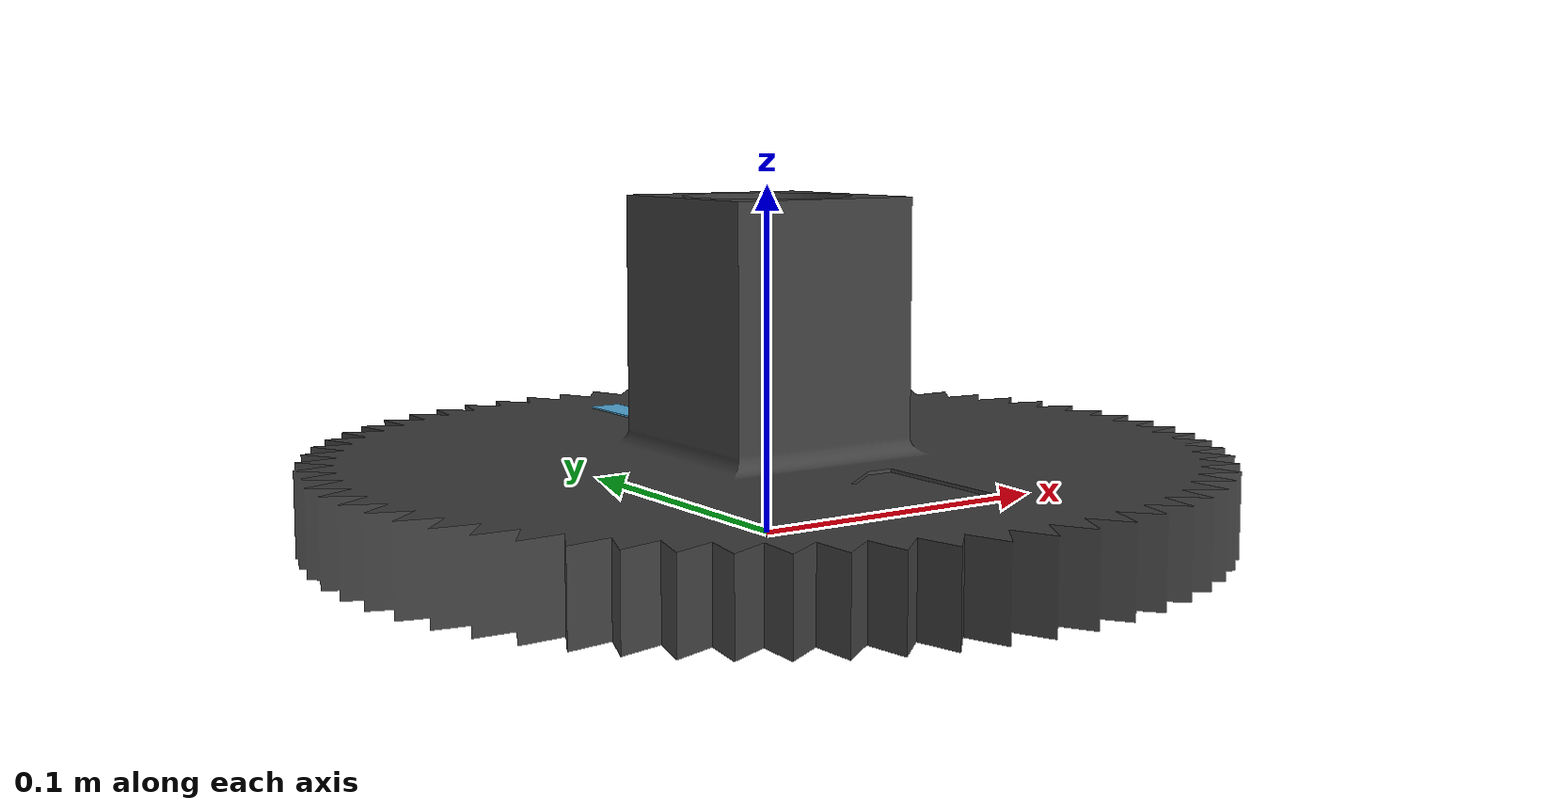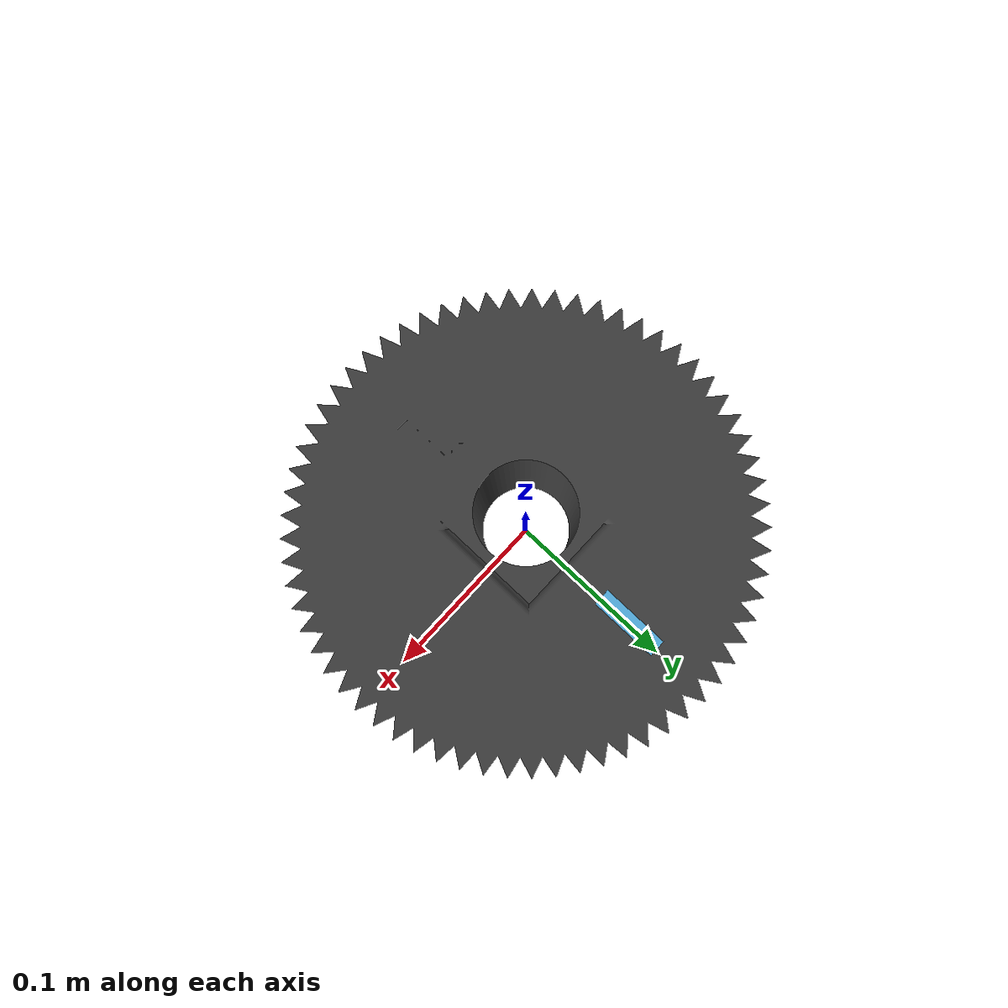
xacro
<?xml version="1.0" ?>
<robot name="first_gear" xmlns:xacro="http://wiki.ros.org/xacro" >
    <xacro:include filename="$(find sirgas_description)/urdf/inc/apriltag_card.xacro"/>

    <link name="first_gear">
        <visual>
            <origin rpy="0 0 0" xyz="0 0 0"/>
            <geometry>
                <mesh filename="file://$(find sirgas_description)/meshes/First_Gear.stl" />
            </geometry>
            <material name="DarkGrey">
                <color rgba="0.25 0.25 0.25 1.0" />
            </material>
        </visual>
        <collision>
            <origin rpy="0 0 0" xyz="0 0 0"/>
            <geometry>
                <mesh filename="file://$(find sirgas_description)/meshes/First_Gear.stl" />
            </geometry>
        </collision>
        <inertial>
            <mass value="0.409"/>
            <origin rpy="0 0 0" xyz="0 0 0"/>
            <inertia ixx="0.00615061" ixy="0.0" ixz="0.0" iyx="0.0" iyy="0.00615163" iyz="0.0" izx="0.0" izy= "0.0" izz="0.01209542"/>
        </inertial>
    </link>
    <xacro:attach_apriltag_card
        parent_link="first_gear"
        tag_size="0.01"
        extra_len="0.03"
        tag_thickness="0.0005"
        xyz="0 0.075 0.025"
        rpy="0 3.14 0"
        link_name="first_gear_apriltag"/>

</robot>

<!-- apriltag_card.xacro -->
<robot xmlns:xacro="http://wiki.ros.org/xacro">

  <xacro:macro name="attach_apriltag_card" params="
      parent_link
      tag_size:=0.02
      extra_len:=0.03
      tag_thickness:=0.001
      xyz:='0 0 0.02'
      rpy:='0 0 0'
      link_name:='${parent_link}_apriltag'
      mass:=0.01
      texture_path:='package://sirgas_description/meshes/Apriltag36_11_00000/materials/textures/tag36_11_00000.png'
      add_back_visual:=false
      back_epsilon:=0.0005">
    <xacro:property name="size_x" value="${tag_size}"/>
    <xacro:property name="size_y" value="${tag_size + extra_len}"/>
    <xacro:property name="size_z" value="${tag_thickness}"/>
    <link name="${link_name}">
      <!-- front face -->
      <visual>
        <origin xyz="${xyz}" rpy="${rpy}"/>
        <geometry>
          <box size="${size_x} ${size_y} ${size_z}"/>
        </geometry>
        <material name="${link_name}_front_tex">
          <texture filename="${texture_path}"/>
        </material>
      </visual>

      <xacro:if value="${add_back_visual}">
        <visual>
          <origin xyz="${xyz}" rpy="0 3.141592653589793 0"/>
          <geometry>
            <box size="${tag_size} ${tag_size} ${tag_thickness}"/>
          </geometry>
          <material name="${link_name}_back_tex">
            <texture filename="${texture_path}"/>
          </material>
        </visual>
      </xacro:if>

      <collision>
        <origin xyz="${xyz}" rpy="${rpy}"/>
        <geometry>
           <box size="${size_x} ${size_y} ${size_z}"/>
        </geometry>
      </collision>

      <inertial>
          <origin xyz="0 0 0" rpy="0 0 0"/>
          <mass value="${mass}"/>
          <xacro:property name="Ixx" value="${mass*((size_y*size_y + size_z*size_z)/12.0)}"/>
          <xacro:property name="Iyy" value="${mass*((size_x*size_x + size_z*size_z)/12.0)}"/>
          <xacro:property name="Izz" value="${mass*((size_x*size_x + size_y*size_y)/12.0)}"/>
          <inertia ixx="${Ixx}" iyy="${Iyy}" izz="${Izz}" ixy="0" ixz="0" iyz="0"/>
        </inertial>
    </link>

    <joint name="${link_name}_fixed" type="fixed">
      <parent link="${parent_link}"/>
      <child link="${link_name}"/>
      <origin xyz="0 0 0" rpy="0 0 0"/>
    </joint>

    <gazebo reference="${link_name}">
      <material>
        <double_sided>1</double_sided>
        <ambient>0.6 0.6 0.6 1</ambient>
        <diffuse>1 1 1 1</diffuse>
        <emissive>0.05 0.05 0.05 1</emissive>
        <pbr>
          <metal>
            <albedo_map>package://sirgas_description/meshes/Apriltag36_11_00000/materials/textures/tag36_11_00000.png</albedo_map>
            <roughness>1.0</roughness>
            <metalness>0.0</metalness>
          </metal>
        </pbr>
      </material>
    </gazebo>

  </xacro:macro>
</robot>
